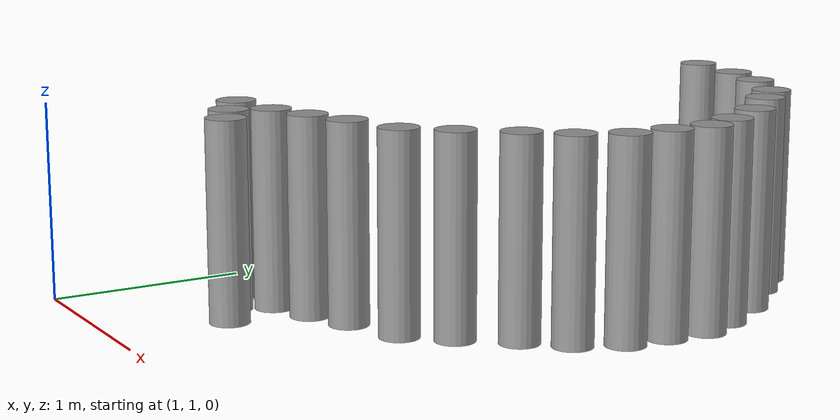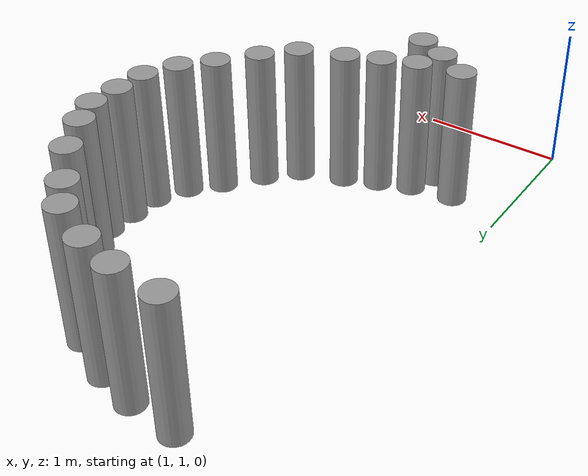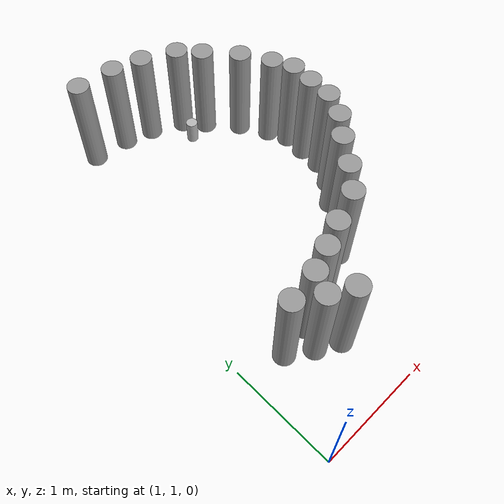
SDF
<sdf version="1.6">
 <world name="default">
  <model name="small_cylinder_0_clone">
   <link name="link">
    <inertial>
     <mass>1</mass>
     <inertia><ixx>0.145833</ixx><ixy>0</ixy><ixz>0</ixz><iyy>0.145833</iyy><iyz>0</iyz><izz>0.125</izz></inertia>
    </inertial>
    <visual name="visual">
     <geometry><cylinder><radius>0.1</radius><length>1</length></cylinder></geometry>
     <material>
      <script><name>Gazebo/Grey</name><uri>file://media/materials/scripts/gazebo.material</uri></script>
      <ambient>0.3 0.3 0.3 1</ambient>
      <diffuse>0.7 0.7 0.7 1</diffuse>
      <specular>0.01 0.01 0.01 1</specular>
      <emissive>0 0 0 1</emissive>
      <shader type="vertex"><normal_map>__default__</normal_map></shader>
     </material>
    </visual>
    <collision name="collision">
     <geometry><cylinder><radius>0.1</radius><length>1</length></cylinder></geometry>
     <surface>
      <friction>
       <ode><mu>1</mu><mu2>1</mu2><fdir1>0 0 0</fdir1><slip1>0</slip1><slip2>0</slip2></ode>
       <torsional>
        <coefficient>1</coefficient>
        <patch_radius>0</patch_radius>
        <surface_radius>0</surface_radius>
        <use_patch_radius>1</use_patch_radius>
        <ode><slip>0</slip></ode>
       </torsional>
      </friction>
      <bounce><restitution_coefficient>0</restitution_coefficient><threshold>1e+06</threshold></bounce>
      <contact>
       <collide_without_contact>0</collide_without_contact>
       <collide_without_contact_bitmask>1</collide_without_contact_bitmask>
       <collide_bitmask>1</collide_bitmask>
       <ode>
        <soft_cfm>0</soft_cfm>
        <soft_erp>0.2</soft_erp>
        <kp>1e+13</kp>
        <kd>1</kd>
        <max_vel>0.01</max_vel>
        <min_depth>0</min_depth>
       </ode>
       <bullet>
        <split_impulse>1</split_impulse>
        <split_impulse_penetration_threshold>-0.01</split_impulse_penetration_threshold>
        <soft_cfm>0</soft_cfm>
        <soft_erp>0.2</soft_erp>
        <kp>1e+13</kp>
        <kd>1</kd>
       </bullet>
      </contact>
     </surface>
    </collision>
   </link>
   <static>1</static>
   <pose>1.38888 1.84077 0.499121 -0 6e-06 -0.010855</pose>
  </model>
  <model name="small_cylinder_0_clone_33">
   <link name="link">
    <inertial>
     <mass>1</mass>
     <inertia><ixx>0.145833</ixx><ixy>0</ixy><ixz>0</ixz><iyy>0.145833</iyy><iyz>0</iyz><izz>0.125</izz></inertia>
    </inertial>
    <visual name="visual">
     <geometry><cylinder><radius>0.1</radius><length>1</length></cylinder></geometry>
     <material>
      <script><name>Gazebo/Grey</name><uri>file://media/materials/scripts/gazebo.material</uri></script>
      <ambient>0.3 0.3 0.3 1</ambient>
      <diffuse>0.7 0.7 0.7 1</diffuse>
      <specular>0.01 0.01 0.01 1</specular>
      <emissive>0 0 0 1</emissive>
      <shader type="vertex"><normal_map>__default__</normal_map></shader>
     </material>
    </visual>
    <collision name="collision">
     <geometry><cylinder><radius>0.1</radius><length>1</length></cylinder></geometry>
     <surface>
      <friction>
       <ode><mu>1</mu><mu2>1</mu2><fdir1>0 0 0</fdir1><slip1>0</slip1><slip2>0</slip2></ode>
       <torsional>
        <coefficient>1</coefficient>
        <patch_radius>0</patch_radius>
        <surface_radius>0</surface_radius>
        <use_patch_radius>1</use_patch_radius>
        <ode><slip>0</slip></ode>
       </torsional>
      </friction>
      <bounce><restitution_coefficient>0</restitution_coefficient><threshold>1e+06</threshold></bounce>
      <contact>
       <collide_without_contact>0</collide_without_contact>
       <collide_without_contact_bitmask>1</collide_without_contact_bitmask>
       <collide_bitmask>1</collide_bitmask>
       <ode>
        <soft_cfm>0</soft_cfm>
        <soft_erp>0.2</soft_erp>
        <kp>1e+13</kp>
        <kd>1</kd>
        <max_vel>0.01</max_vel>
        <min_depth>0</min_depth>
       </ode>
       <bullet>
        <split_impulse>1</split_impulse>
        <split_impulse_penetration_threshold>-0.01</split_impulse_penetration_threshold>
        <soft_cfm>0</soft_cfm>
        <soft_erp>0.2</soft_erp>
        <kp>1e+13</kp>
        <kd>1</kd>
       </bullet>
      </contact>
     </surface>
    </collision>
   </link>
   <static>1</static>
   <pose>1.58254 4.59247 0.499121 0 6e-06 -0.010847</pose>
  </model>
  <model name="small_cylinder_0_clone_34">
   <link name="link">
    <inertial>
     <mass>1</mass>
     <inertia><ixx>0.145833</ixx><ixy>0</ixy><ixz>0</ixz><iyy>0.145833</iyy><iyz>0</iyz><izz>0.125</izz></inertia>
    </inertial>
    <visual name="visual">
     <geometry><cylinder><radius>0.1</radius><length>1</length></cylinder></geometry>
     <material>
      <script><name>Gazebo/Grey</name><uri>file://media/materials/scripts/gazebo.material</uri></script>
      <ambient>0.3 0.3 0.3 1</ambient>
      <diffuse>0.7 0.7 0.7 1</diffuse>
      <specular>0.01 0.01 0.01 1</specular>
      <emissive>0 0 0 1</emissive>
      <shader type="vertex"><normal_map>__default__</normal_map></shader>
     </material>
    </visual>
    <collision name="collision">
     <geometry><cylinder><radius>0.1</radius><length>1</length></cylinder></geometry>
     <surface>
      <friction>
       <ode><mu>1</mu><mu2>1</mu2><fdir1>0 0 0</fdir1><slip1>0</slip1><slip2>0</slip2></ode>
       <torsional>
        <coefficient>1</coefficient>
        <patch_radius>0</patch_radius>
        <surface_radius>0</surface_radius>
        <use_patch_radius>1</use_patch_radius>
        <ode><slip>0</slip></ode>
       </torsional>
      </friction>
      <bounce><restitution_coefficient>0</restitution_coefficient><threshold>1e+06</threshold></bounce>
      <contact>
       <collide_without_contact>0</collide_without_contact>
       <collide_without_contact_bitmask>1</collide_without_contact_bitmask>
       <collide_bitmask>1</collide_bitmask>
       <ode>
        <soft_cfm>0</soft_cfm>
        <soft_erp>0.2</soft_erp>
        <kp>1e+13</kp>
        <kd>1</kd>
        <max_vel>0.01</max_vel>
        <min_depth>0</min_depth>
       </ode>
       <bullet>
        <split_impulse>1</split_impulse>
        <split_impulse_penetration_threshold>-0.01</split_impulse_penetration_threshold>
        <soft_cfm>0</soft_cfm>
        <soft_erp>0.2</soft_erp>
        <kp>1e+13</kp>
        <kd>1</kd>
       </bullet>
      </contact>
     </surface>
    </collision>
   </link>
   <static>1</static>
   <pose>1.93131 4.55353 0.499121 0 6e-06 -0.010886</pose>
  </model>
  <model name="small_cylinder_0_clone_38">
   <link name="link">
    <inertial>
     <mass>1</mass>
     <inertia><ixx>0.145833</ixx><ixy>0</ixy><ixz>0</ixz><iyy>0.145833</iyy><iyz>0</iyz><izz>0.125</izz></inertia>
    </inertial>
    <visual name="visual">
     <geometry><cylinder><radius>0.1</radius><length>1</length></cylinder></geometry>
     <material>
      <script><name>Gazebo/Grey</name><uri>file://media/materials/scripts/gazebo.material</uri></script>
      <ambient>0.3 0.3 0.3 1</ambient>
      <diffuse>0.7 0.7 0.7 1</diffuse>
      <specular>0.01 0.01 0.01 1</specular>
      <emissive>0 0 0 1</emissive>
      <shader type="vertex"><normal_map>__default__</normal_map></shader>
     </material>
    </visual>
    <collision name="collision">
     <geometry><cylinder><radius>0.1</radius><length>1</length></cylinder></geometry>
     <surface>
      <friction>
       <ode><mu>1</mu><mu2>1</mu2><fdir1>0 0 0</fdir1><slip1>0</slip1><slip2>0</slip2></ode>
       <torsional>
        <coefficient>1</coefficient>
        <patch_radius>0</patch_radius>
        <surface_radius>0</surface_radius>
        <use_patch_radius>1</use_patch_radius>
        <ode><slip>0</slip></ode>
       </torsional>
      </friction>
      <bounce><restitution_coefficient>0</restitution_coefficient><threshold>1e+06</threshold></bounce>
      <contact>
       <collide_without_contact>0</collide_without_contact>
       <collide_without_contact_bitmask>1</collide_without_contact_bitmask>
       <collide_bitmask>1</collide_bitmask>
       <ode>
        <soft_cfm>0</soft_cfm>
        <soft_erp>0.2</soft_erp>
        <kp>1e+13</kp>
        <kd>1</kd>
        <max_vel>0.01</max_vel>
        <min_depth>0</min_depth>
       </ode>
       <bullet>
        <split_impulse>1</split_impulse>
        <split_impulse_penetration_threshold>-0.01</split_impulse_penetration_threshold>
        <soft_cfm>0</soft_cfm>
        <soft_erp>0.2</soft_erp>
        <kp>1e+13</kp>
        <kd>1</kd>
       </bullet>
      </contact>
     </surface>
    </collision>
   </link>
   <static>1</static>
   <pose>2.20247 4.47561 0.499121 0 6e-06 -0.010839</pose>
  </model>
  <model name="small_cylinder_0_clone_39">
   <link name="link">
    <inertial>
     <mass>1</mass>
     <inertia><ixx>0.145833</ixx><ixy>0</ixy><ixz>0</ixz><iyy>0.145833</iyy><iyz>0</iyz><izz>0.125</izz></inertia>
    </inertial>
    <visual name="visual">
     <geometry><cylinder><radius>0.1</radius><length>1</length></cylinder></geometry>
     <material>
      <script><name>Gazebo/Grey</name><uri>file://media/materials/scripts/gazebo.material</uri></script>
      <ambient>0.3 0.3 0.3 1</ambient>
      <diffuse>0.7 0.7 0.7 1</diffuse>
      <specular>0.01 0.01 0.01 1</specular>
      <emissive>0 0 0 1</emissive>
      <shader type="vertex"><normal_map>__default__</normal_map></shader>
     </material>
    </visual>
    <collision name="collision">
     <geometry><cylinder><radius>0.1</radius><length>1</length></cylinder></geometry>
     <surface>
      <friction>
       <ode><mu>1</mu><mu2>1</mu2><fdir1>0 0 0</fdir1><slip1>0</slip1><slip2>0</slip2></ode>
       <torsional>
        <coefficient>1</coefficient>
        <patch_radius>0</patch_radius>
        <surface_radius>0</surface_radius>
        <use_patch_radius>1</use_patch_radius>
        <ode><slip>0</slip></ode>
       </torsional>
      </friction>
      <bounce><restitution_coefficient>0</restitution_coefficient><threshold>1e+06</threshold></bounce>
      <contact>
       <collide_without_contact>0</collide_without_contact>
       <collide_without_contact_bitmask>1</collide_without_contact_bitmask>
       <collide_bitmask>1</collide_bitmask>
       <ode>
        <soft_cfm>0</soft_cfm>
        <soft_erp>0.2</soft_erp>
        <kp>1e+13</kp>
        <kd>1</kd>
        <max_vel>0.01</max_vel>
        <min_depth>0</min_depth>
       </ode>
       <bullet>
        <split_impulse>1</split_impulse>
        <split_impulse_penetration_threshold>-0.01</split_impulse_penetration_threshold>
        <soft_cfm>0</soft_cfm>
        <soft_erp>0.2</soft_erp>
        <kp>1e+13</kp>
        <kd>1</kd>
       </bullet>
      </contact>
     </surface>
    </collision>
   </link>
   <static>1</static>
   <pose>2.50202 4.32863 0.499121 0 6e-06 -0.010788</pose>
  </model>
  <model name="small_cylinder_0_clone_40">
   <link name="link">
    <inertial>
     <mass>1</mass>
     <inertia><ixx>0.145833</ixx><ixy>0</ixy><ixz>0</ixz><iyy>0.145833</iyy><iyz>0</iyz><izz>0.125</izz></inertia>
    </inertial>
    <visual name="visual">
     <geometry><cylinder><radius>0.1</radius><length>1</length></cylinder></geometry>
     <material>
      <script><name>Gazebo/Grey</name><uri>file://media/materials/scripts/gazebo.material</uri></script>
      <ambient>0.3 0.3 0.3 1</ambient>
      <diffuse>0.7 0.7 0.7 1</diffuse>
      <specular>0.01 0.01 0.01 1</specular>
      <emissive>0 0 0 1</emissive>
      <shader type="vertex"><normal_map>__default__</normal_map></shader>
     </material>
    </visual>
    <collision name="collision">
     <geometry><cylinder><radius>0.1</radius><length>1</length></cylinder></geometry>
     <surface>
      <friction>
       <ode><mu>1</mu><mu2>1</mu2><fdir1>0 0 0</fdir1><slip1>0</slip1><slip2>0</slip2></ode>
       <torsional>
        <coefficient>1</coefficient>
        <patch_radius>0</patch_radius>
        <surface_radius>0</surface_radius>
        <use_patch_radius>1</use_patch_radius>
        <ode><slip>0</slip></ode>
       </torsional>
      </friction>
      <bounce><restitution_coefficient>0</restitution_coefficient><threshold>1e+06</threshold></bounce>
      <contact>
       <collide_without_contact>0</collide_without_contact>
       <collide_without_contact_bitmask>1</collide_without_contact_bitmask>
       <collide_bitmask>1</collide_bitmask>
       <ode>
        <soft_cfm>0</soft_cfm>
        <soft_erp>0.2</soft_erp>
        <kp>1e+13</kp>
        <kd>1</kd>
        <max_vel>0.01</max_vel>
        <min_depth>0</min_depth>
       </ode>
       <bullet>
        <split_impulse>1</split_impulse>
        <split_impulse_penetration_threshold>-0.01</split_impulse_penetration_threshold>
        <soft_cfm>0</soft_cfm>
        <soft_erp>0.2</soft_erp>
        <kp>1e+13</kp>
        <kd>1</kd>
       </bullet>
      </contact>
     </surface>
    </collision>
   </link>
   <static>1</static>
   <pose>2.65985 4.15302 0.499121 0 6e-06 -0.010837</pose>
  </model>
  <model name="small_cylinder_0_clone_41">
   <link name="link">
    <inertial>
     <mass>1</mass>
     <inertia><ixx>0.145833</ixx><ixy>0</ixy><ixz>0</ixz><iyy>0.145833</iyy><iyz>0</iyz><izz>0.125</izz></inertia>
    </inertial>
    <visual name="visual">
     <geometry><cylinder><radius>0.1</radius><length>1</length></cylinder></geometry>
     <material>
      <script><name>Gazebo/Grey</name><uri>file://media/materials/scripts/gazebo.material</uri></script>
      <ambient>0.3 0.3 0.3 1</ambient>
      <diffuse>0.7 0.7 0.7 1</diffuse>
      <specular>0.01 0.01 0.01 1</specular>
      <emissive>0 0 0 1</emissive>
      <shader type="vertex"><normal_map>__default__</normal_map></shader>
     </material>
    </visual>
    <collision name="collision">
     <geometry><cylinder><radius>0.1</radius><length>1</length></cylinder></geometry>
     <surface>
      <friction>
       <ode><mu>1</mu><mu2>1</mu2><fdir1>0 0 0</fdir1><slip1>0</slip1><slip2>0</slip2></ode>
       <torsional>
        <coefficient>1</coefficient>
        <patch_radius>0</patch_radius>
        <surface_radius>0</surface_radius>
        <use_patch_radius>1</use_patch_radius>
        <ode><slip>0</slip></ode>
       </torsional>
      </friction>
      <bounce><restitution_coefficient>0</restitution_coefficient><threshold>1e+06</threshold></bounce>
      <contact>
       <collide_without_contact>0</collide_without_contact>
       <collide_without_contact_bitmask>1</collide_without_contact_bitmask>
       <collide_bitmask>1</collide_bitmask>
       <ode>
        <soft_cfm>0</soft_cfm>
        <soft_erp>0.2</soft_erp>
        <kp>1e+13</kp>
        <kd>1</kd>
        <max_vel>0.01</max_vel>
        <min_depth>0</min_depth>
       </ode>
       <bullet>
        <split_impulse>1</split_impulse>
        <split_impulse_penetration_threshold>-0.01</split_impulse_penetration_threshold>
        <soft_cfm>0</soft_cfm>
        <soft_erp>0.2</soft_erp>
        <kp>1e+13</kp>
        <kd>1</kd>
       </bullet>
      </contact>
     </surface>
    </collision>
   </link>
   <static>1</static>
   <pose>2.89012 3.89183 0.499121 -0 6e-06 -0.010846</pose>
  </model>
  <model name="small_cylinder_0_clone_42">
   <link name="link">
    <inertial>
     <mass>1</mass>
     <inertia><ixx>0.145833</ixx><ixy>0</ixy><ixz>0</ixz><iyy>0.145833</iyy><iyz>0</iyz><izz>0.125</izz></inertia>
    </inertial>
    <visual name="visual">
     <geometry><cylinder><radius>0.1</radius><length>1</length></cylinder></geometry>
     <material>
      <script><name>Gazebo/Grey</name><uri>file://media/materials/scripts/gazebo.material</uri></script>
      <ambient>0.3 0.3 0.3 1</ambient>
      <diffuse>0.7 0.7 0.7 1</diffuse>
      <specular>0.01 0.01 0.01 1</specular>
      <emissive>0 0 0 1</emissive>
      <shader type="vertex"><normal_map>__default__</normal_map></shader>
     </material>
    </visual>
    <collision name="collision">
     <geometry><cylinder><radius>0.1</radius><length>1</length></cylinder></geometry>
     <surface>
      <friction>
       <ode><mu>1</mu><mu2>1</mu2><fdir1>0 0 0</fdir1><slip1>0</slip1><slip2>0</slip2></ode>
       <torsional>
        <coefficient>1</coefficient>
        <patch_radius>0</patch_radius>
        <surface_radius>0</surface_radius>
        <use_patch_radius>1</use_patch_radius>
        <ode><slip>0</slip></ode>
       </torsional>
      </friction>
      <bounce><restitution_coefficient>0</restitution_coefficient><threshold>1e+06</threshold></bounce>
      <contact>
       <collide_without_contact>0</collide_without_contact>
       <collide_without_contact_bitmask>1</collide_without_contact_bitmask>
       <collide_bitmask>1</collide_bitmask>
       <ode>
        <soft_cfm>0</soft_cfm>
        <soft_erp>0.2</soft_erp>
        <kp>1e+13</kp>
        <kd>1</kd>
        <max_vel>0.01</max_vel>
        <min_depth>0</min_depth>
       </ode>
       <bullet>
        <split_impulse>1</split_impulse>
        <split_impulse_penetration_threshold>-0.01</split_impulse_penetration_threshold>
        <soft_cfm>0</soft_cfm>
        <soft_erp>0.2</soft_erp>
        <kp>1e+13</kp>
        <kd>1</kd>
       </bullet>
      </contact>
     </surface>
    </collision>
   </link>
   <static>1</static>
   <pose>3.03888 3.62894 0.499121 0 6e-06 -0.010854</pose>
  </model>
  <model name="small_cylinder_0_clone_clone">
   <link name="link">
    <inertial>
     <mass>1</mass>
     <inertia><ixx>0.145833</ixx><ixy>0</ixy><ixz>0</ixz><iyy>0.145833</iyy><iyz>0</iyz><izz>0.125</izz></inertia>
    </inertial>
    <visual name="visual">
     <geometry><cylinder><radius>0.1</radius><length>1</length></cylinder></geometry>
     <material>
      <script><name>Gazebo/Grey</name><uri>file://media/materials/scripts/gazebo.material</uri></script>
      <ambient>0.3 0.3 0.3 1</ambient>
      <diffuse>0.7 0.7 0.7 1</diffuse>
      <specular>0.01 0.01 0.01 1</specular>
      <emissive>0 0 0 1</emissive>
      <shader type="vertex"><normal_map>__default__</normal_map></shader>
     </material>
    </visual>
    <collision name="collision">
     <geometry><cylinder><radius>0.1</radius><length>1</length></cylinder></geometry>
     <surface>
      <friction>
       <ode><mu>1</mu><mu2>1</mu2><fdir1>0 0 0</fdir1><slip1>0</slip1><slip2>0</slip2></ode>
       <torsional>
        <coefficient>1</coefficient>
        <patch_radius>0</patch_radius>
        <surface_radius>0</surface_radius>
        <use_patch_radius>1</use_patch_radius>
        <ode><slip>0</slip></ode>
       </torsional>
      </friction>
      <bounce><restitution_coefficient>0</restitution_coefficient><threshold>1e+06</threshold></bounce>
      <contact>
       <collide_without_contact>0</collide_without_contact>
       <collide_without_contact_bitmask>1</collide_without_contact_bitmask>
       <collide_bitmask>1</collide_bitmask>
       <ode>
        <soft_cfm>0</soft_cfm>
        <soft_erp>0.2</soft_erp>
        <kp>1e+13</kp>
        <kd>1</kd>
        <max_vel>0.01</max_vel>
        <min_depth>0</min_depth>
       </ode>
       <bullet>
        <split_impulse>1</split_impulse>
        <split_impulse_penetration_threshold>-0.01</split_impulse_penetration_threshold>
        <soft_cfm>0</soft_cfm>
        <soft_erp>0.2</soft_erp>
        <kp>1e+13</kp>
        <kd>1</kd>
       </bullet>
      </contact>
     </surface>
    </collision>
   </link>
   <static>1</static>
   <pose>1.69118 1.88563 0.499121 -0 6e-06 -0.010855</pose>
  </model>
  <model name="small_cylinder_0_clone_clone_0">
   <link name="link">
    <inertial>
     <mass>1</mass>
     <inertia><ixx>0.145833</ixx><ixy>0</ixy><ixz>0</ixz><iyy>0.145833</iyy><iyz>0</iyz><izz>0.125</izz></inertia>
    </inertial>
    <visual name="visual">
     <geometry><cylinder><radius>0.1</radius><length>1</length></cylinder></geometry>
     <material>
      <script><name>Gazebo/Grey</name><uri>file://media/materials/scripts/gazebo.material</uri></script>
      <ambient>0.3 0.3 0.3 1</ambient>
      <diffuse>0.7 0.7 0.7 1</diffuse>
      <specular>0.01 0.01 0.01 1</specular>
      <emissive>0 0 0 1</emissive>
      <shader type="vertex"><normal_map>__default__</normal_map></shader>
     </material>
    </visual>
    <collision name="collision">
     <geometry><cylinder><radius>0.1</radius><length>1</length></cylinder></geometry>
     <surface>
      <friction>
       <ode><mu>1</mu><mu2>1</mu2><fdir1>0 0 0</fdir1><slip1>0</slip1><slip2>0</slip2></ode>
       <torsional>
        <coefficient>1</coefficient>
        <patch_radius>0</patch_radius>
        <surface_radius>0</surface_radius>
        <use_patch_radius>1</use_patch_radius>
        <ode><slip>0</slip></ode>
       </torsional>
      </friction>
      <bounce><restitution_coefficient>0</restitution_coefficient><threshold>1e+06</threshold></bounce>
      <contact>
       <collide_without_contact>0</collide_without_contact>
       <collide_without_contact_bitmask>1</collide_without_contact_bitmask>
       <collide_bitmask>1</collide_bitmask>
       <ode>
        <soft_cfm>0</soft_cfm>
        <soft_erp>0.2</soft_erp>
        <kp>1e+13</kp>
        <kd>1</kd>
        <max_vel>0.01</max_vel>
        <min_depth>0</min_depth>
       </ode>
       <bullet>
        <split_impulse>1</split_impulse>
        <split_impulse_penetration_threshold>-0.01</split_impulse_penetration_threshold>
        <soft_cfm>0</soft_cfm>
        <soft_erp>0.2</soft_erp>
        <kp>1e+13</kp>
        <kd>1</kd>
       </bullet>
      </contact>
     </surface>
    </collision>
   </link>
   <static>1</static>
   <pose>1.91586 1.96701 0.499121 0 6e-06 -0.010801</pose>
  </model>
  <model name="small_cylinder_0_clone_clone_1">
   <link name="link">
    <inertial>
     <mass>1</mass>
     <inertia><ixx>0.145833</ixx><ixy>0</ixy><ixz>0</ixz><iyy>0.145833</iyy><iyz>0</iyz><izz>0.125</izz></inertia>
    </inertial>
    <visual name="visual">
     <geometry><cylinder><radius>0.1</radius><length>1</length></cylinder></geometry>
     <material>
      <script><name>Gazebo/Grey</name><uri>file://media/materials/scripts/gazebo.material</uri></script>
      <ambient>0.3 0.3 0.3 1</ambient>
      <diffuse>0.7 0.7 0.7 1</diffuse>
      <specular>0.01 0.01 0.01 1</specular>
      <emissive>0 0 0 1</emissive>
      <shader type="vertex"><normal_map>__default__</normal_map></shader>
     </material>
    </visual>
    <collision name="collision">
     <geometry><cylinder><radius>0.1</radius><length>1</length></cylinder></geometry>
     <surface>
      <friction>
       <ode><mu>1</mu><mu2>1</mu2><fdir1>0 0 0</fdir1><slip1>0</slip1><slip2>0</slip2></ode>
       <torsional>
        <coefficient>1</coefficient>
        <patch_radius>0</patch_radius>
        <surface_radius>0</surface_radius>
        <use_patch_radius>1</use_patch_radius>
        <ode><slip>0</slip></ode>
       </torsional>
      </friction>
      <bounce><restitution_coefficient>0</restitution_coefficient><threshold>1e+06</threshold></bounce>
      <contact>
       <collide_without_contact>0</collide_without_contact>
       <collide_without_contact_bitmask>1</collide_without_contact_bitmask>
       <collide_bitmask>1</collide_bitmask>
       <ode>
        <soft_cfm>0</soft_cfm>
        <soft_erp>0.2</soft_erp>
        <kp>1e+13</kp>
        <kd>1</kd>
        <max_vel>0.01</max_vel>
        <min_depth>0</min_depth>
       </ode>
       <bullet>
        <split_impulse>1</split_impulse>
        <split_impulse_penetration_threshold>-0.01</split_impulse_penetration_threshold>
        <soft_cfm>0</soft_cfm>
        <soft_erp>0.2</soft_erp>
        <kp>1e+13</kp>
        <kd>1</kd>
       </bullet>
      </contact>
     </surface>
    </collision>
   </link>
   <static>1</static>
   <pose>2.14336 2.05861 0.499121 0 6e-06 -0.01074</pose>
  </model>
  <model name="small_cylinder_0_clone_clone_2">
   <link name="link">
    <inertial>
     <mass>1</mass>
     <inertia><ixx>0.145833</ixx><ixy>0</ixy><ixz>0</ixz><iyy>0.145833</iyy><iyz>0</iyz><izz>0.125</izz></inertia>
    </inertial>
    <visual name="visual">
     <geometry><cylinder><radius>0.1</radius><length>1</length></cylinder></geometry>
     <material>
      <script><name>Gazebo/Grey</name><uri>file://media/materials/scripts/gazebo.material</uri></script>
      <ambient>0.3 0.3 0.3 1</ambient>
      <diffuse>0.7 0.7 0.7 1</diffuse>
      <specular>0.01 0.01 0.01 1</specular>
      <emissive>0 0 0 1</emissive>
      <shader type="vertex"><normal_map>__default__</normal_map></shader>
     </material>
    </visual>
    <collision name="collision">
     <geometry><cylinder><radius>0.1</radius><length>1</length></cylinder></geometry>
     <surface>
      <friction>
       <ode><mu>1</mu><mu2>1</mu2><fdir1>0 0 0</fdir1><slip1>0</slip1><slip2>0</slip2></ode>
       <torsional>
        <coefficient>1</coefficient>
        <patch_radius>0</patch_radius>
        <surface_radius>0</surface_radius>
        <use_patch_radius>1</use_patch_radius>
        <ode><slip>0</slip></ode>
       </torsional>
      </friction>
      <bounce><restitution_coefficient>0</restitution_coefficient><threshold>1e+06</threshold></bounce>
      <contact>
       <collide_without_contact>0</collide_without_contact>
       <collide_without_contact_bitmask>1</collide_without_contact_bitmask>
       <collide_bitmask>1</collide_bitmask>
       <ode>
        <soft_cfm>0</soft_cfm>
        <soft_erp>0.2</soft_erp>
        <kp>1e+13</kp>
        <kd>1</kd>
        <max_vel>0.01</max_vel>
        <min_depth>0</min_depth>
       </ode>
       <bullet>
        <split_impulse>1</split_impulse>
        <split_impulse_penetration_threshold>-0.01</split_impulse_penetration_threshold>
        <soft_cfm>0</soft_cfm>
        <soft_erp>0.2</soft_erp>
        <kp>1e+13</kp>
        <kd>1</kd>
       </bullet>
      </contact>
     </surface>
    </collision>
   </link>
   <static>1</static>
   <pose>2.44389 2.16344 0.499121 0 6e-06 -0.010678</pose>
  </model>
  <model name="small_cylinder_0_clone_clone_3">
   <link name="link">
    <inertial>
     <mass>1</mass>
     <inertia><ixx>0.145833</ixx><ixy>0</ixy><ixz>0</ixz><iyy>0.145833</iyy><iyz>0</iyz><izz>0.125</izz></inertia>
    </inertial>
    <visual name="visual">
     <geometry><cylinder><radius>0.1</radius><length>1</length></cylinder></geometry>
     <material>
      <script><name>Gazebo/Grey</name><uri>file://media/materials/scripts/gazebo.material</uri></script>
      <ambient>0.3 0.3 0.3 1</ambient>
      <diffuse>0.7 0.7 0.7 1</diffuse>
      <specular>0.01 0.01 0.01 1</specular>
      <emissive>0 0 0 1</emissive>
      <shader type="vertex"><normal_map>__default__</normal_map></shader>
     </material>
    </visual>
    <collision name="collision">
     <geometry><cylinder><radius>0.1</radius><length>1</length></cylinder></geometry>
     <surface>
      <friction>
       <ode><mu>1</mu><mu2>1</mu2><fdir1>0 0 0</fdir1><slip1>0</slip1><slip2>0</slip2></ode>
       <torsional>
        <coefficient>1</coefficient>
        <patch_radius>0</patch_radius>
        <surface_radius>0</surface_radius>
        <use_patch_radius>1</use_patch_radius>
        <ode><slip>0</slip></ode>
       </torsional>
      </friction>
      <bounce><restitution_coefficient>0</restitution_coefficient><threshold>1e+06</threshold></bounce>
      <contact>
       <collide_without_contact>0</collide_without_contact>
       <collide_without_contact_bitmask>1</collide_without_contact_bitmask>
       <collide_bitmask>1</collide_bitmask>
       <ode>
        <soft_cfm>0</soft_cfm>
        <soft_erp>0.2</soft_erp>
        <kp>1e+13</kp>
        <kd>1</kd>
        <max_vel>0.01</max_vel>
        <min_depth>0</min_depth>
       </ode>
       <bullet>
        <split_impulse>1</split_impulse>
        <split_impulse_penetration_threshold>-0.01</split_impulse_penetration_threshold>
        <soft_cfm>0</soft_cfm>
        <soft_erp>0.2</soft_erp>
        <kp>1e+13</kp>
        <kd>1</kd>
       </bullet>
      </contact>
     </surface>
    </collision>
   </link>
   <static>1</static>
   <pose>2.6261 2.35768 0.499121 0 6e-06 -0.010632</pose>
  </model>
  <model name="small_cylinder_0_clone_clone_4">
   <link name="link">
    <inertial>
     <mass>1</mass>
     <inertia><ixx>0.145833</ixx><ixy>0</ixy><ixz>0</ixz><iyy>0.145833</iyy><iyz>0</iyz><izz>0.125</izz></inertia>
    </inertial>
    <visual name="visual">
     <geometry><cylinder><radius>0.1</radius><length>1</length></cylinder></geometry>
     <material>
      <script><name>Gazebo/Grey</name><uri>file://media/materials/scripts/gazebo.material</uri></script>
      <ambient>0.3 0.3 0.3 1</ambient>
      <diffuse>0.7 0.7 0.7 1</diffuse>
      <specular>0.01 0.01 0.01 1</specular>
      <emissive>0 0 0 1</emissive>
      <shader type="vertex"><normal_map>__default__</normal_map></shader>
     </material>
    </visual>
    <collision name="collision">
     <geometry><cylinder><radius>0.1</radius><length>1</length></cylinder></geometry>
     <surface>
      <friction>
       <ode><mu>1</mu><mu2>1</mu2><fdir1>0 0 0</fdir1><slip1>0</slip1><slip2>0</slip2></ode>
       <torsional>
        <coefficient>1</coefficient>
        <patch_radius>0</patch_radius>
        <surface_radius>0</surface_radius>
        <use_patch_radius>1</use_patch_radius>
        <ode><slip>0</slip></ode>
       </torsional>
      </friction>
      <bounce><restitution_coefficient>0</restitution_coefficient><threshold>1e+06</threshold></bounce>
      <contact>
       <collide_without_contact>0</collide_without_contact>
       <collide_without_contact_bitmask>1</collide_without_contact_bitmask>
       <collide_bitmask>1</collide_bitmask>
       <ode>
        <soft_cfm>0</soft_cfm>
        <soft_erp>0.2</soft_erp>
        <kp>1e+13</kp>
        <kd>1</kd>
        <max_vel>0.01</max_vel>
        <min_depth>0</min_depth>
       </ode>
       <bullet>
        <split_impulse>1</split_impulse>
        <split_impulse_penetration_threshold>-0.01</split_impulse_penetration_threshold>
        <soft_cfm>0</soft_cfm>
        <soft_erp>0.2</soft_erp>
        <kp>1e+13</kp>
        <kd>1</kd>
       </bullet>
      </contact>
     </surface>
    </collision>
   </link>
   <static>1</static>
   <pose>2.81502 2.59123 0.499121 0 6e-06 -0.010578</pose>
  </model>
  <model name="small_cylinder_0_clone_clone_5">
   <link name="link">
    <inertial>
     <mass>1</mass>
     <inertia><ixx>0.145833</ixx><ixy>0</ixy><ixz>0</ixz><iyy>0.145833</iyy><iyz>0</iyz><izz>0.125</izz></inertia>
    </inertial>
    <visual name="visual">
     <geometry><cylinder><radius>0.1</radius><length>1</length></cylinder></geometry>
     <material>
      <script><name>Gazebo/Grey</name><uri>file://media/materials/scripts/gazebo.material</uri></script>
      <ambient>0.3 0.3 0.3 1</ambient>
      <diffuse>0.7 0.7 0.7 1</diffuse>
      <specular>0.01 0.01 0.01 1</specular>
      <emissive>0 0 0 1</emissive>
      <shader type="vertex"><normal_map>__default__</normal_map></shader>
     </material>
    </visual>
    <collision name="collision">
     <geometry><cylinder><radius>0.1</radius><length>1</length></cylinder></geometry>
     <surface>
      <friction>
       <ode><mu>1</mu><mu2>1</mu2><fdir1>0 0 0</fdir1><slip1>0</slip1><slip2>0</slip2></ode>
       <torsional>
        <coefficient>1</coefficient>
        <patch_radius>0</patch_radius>
        <surface_radius>0</surface_radius>
        <use_patch_radius>1</use_patch_radius>
        <ode><slip>0</slip></ode>
       </torsional>
      </friction>
      <bounce><restitution_coefficient>0</restitution_coefficient><threshold>1e+06</threshold></bounce>
      <contact>
       <collide_without_contact>0</collide_without_contact>
       <collide_without_contact_bitmask>1</collide_without_contact_bitmask>
       <collide_bitmask>1</collide_bitmask>
       <ode>
        <soft_cfm>0</soft_cfm>
        <soft_erp>0.2</soft_erp>
        <kp>1e+13</kp>
        <kd>1</kd>
        <max_vel>0.01</max_vel>
        <min_depth>0</min_depth>
       </ode>
       <bullet>
        <split_impulse>1</split_impulse>
        <split_impulse_penetration_threshold>-0.01</split_impulse_penetration_threshold>
        <soft_cfm>0</soft_cfm>
        <soft_erp>0.2</soft_erp>
        <kp>1e+13</kp>
        <kd>1</kd>
       </bullet>
      </contact>
     </surface>
    </collision>
   </link>
   <static>1</static>
   <pose>2.98303 2.77264 0.499121 0 6e-06 -0.010516</pose>
  </model>
  <model name="small_cylinder_0_clone_clone_6">
   <link name="link">
    <inertial>
     <mass>1</mass>
     <inertia><ixx>0.145833</ixx><ixy>0</ixy><ixz>0</ixz><iyy>0.145833</iyy><iyz>0</iyz><izz>0.125</izz></inertia>
    </inertial>
    <visual name="visual">
     <geometry><cylinder><radius>0.1</radius><length>1</length></cylinder></geometry>
     <material>
      <script><name>Gazebo/Grey</name><uri>file://media/materials/scripts/gazebo.material</uri></script>
      <ambient>0.3 0.3 0.3 1</ambient>
      <diffuse>0.7 0.7 0.7 1</diffuse>
      <specular>0.01 0.01 0.01 1</specular>
      <emissive>0 0 0 1</emissive>
      <shader type="vertex"><normal_map>__default__</normal_map></shader>
     </material>
    </visual>
    <collision name="collision">
     <geometry><cylinder><radius>0.1</radius><length>1</length></cylinder></geometry>
     <surface>
      <friction>
       <ode><mu>1</mu><mu2>1</mu2><fdir1>0 0 0</fdir1><slip1>0</slip1><slip2>0</slip2></ode>
       <torsional>
        <coefficient>1</coefficient>
        <patch_radius>0</patch_radius>
        <surface_radius>0</surface_radius>
        <use_patch_radius>1</use_patch_radius>
        <ode><slip>0</slip></ode>
       </torsional>
      </friction>
      <bounce><restitution_coefficient>0</restitution_coefficient><threshold>1e+06</threshold></bounce>
      <contact>
       <collide_without_contact>0</collide_without_contact>
       <collide_without_contact_bitmask>1</collide_without_contact_bitmask>
       <collide_bitmask>1</collide_bitmask>
       <ode>
        <soft_cfm>0</soft_cfm>
        <soft_erp>0.2</soft_erp>
        <kp>1e+13</kp>
        <kd>1</kd>
        <max_vel>0.01</max_vel>
        <min_depth>0</min_depth>
       </ode>
       <bullet>
        <split_impulse>1</split_impulse>
        <split_impulse_penetration_threshold>-0.01</split_impulse_penetration_threshold>
        <soft_cfm>0</soft_cfm>
        <soft_erp>0.2</soft_erp>
        <kp>1e+13</kp>
        <kd>1</kd>
       </bullet>
      </contact>
     </surface>
    </collision>
   </link>
   <static>1</static>
   <pose>3.09287 2.99269 0.499121 0 6e-06 -0.010448</pose>
  </model>
  <model name="small_cylinder_0_clone_clone_7">
   <link name="link">
    <inertial>
     <mass>1</mass>
     <inertia><ixx>0.145833</ixx><ixy>0</ixy><ixz>0</ixz><iyy>0.145833</iyy><iyz>0</iyz><izz>0.125</izz></inertia>
    </inertial>
    <visual name="visual">
     <geometry><cylinder><radius>0.1</radius><length>1</length></cylinder></geometry>
     <material>
      <script><name>Gazebo/Grey</name><uri>file://media/materials/scripts/gazebo.material</uri></script>
      <ambient>0.3 0.3 0.3 1</ambient>
      <diffuse>0.7 0.7 0.7 1</diffuse>
      <specular>0.01 0.01 0.01 1</specular>
      <emissive>0 0 0 1</emissive>
      <shader type="vertex"><normal_map>__default__</normal_map></shader>
     </material>
    </visual>
    <collision name="collision">
     <geometry><cylinder><radius>0.1</radius><length>1</length></cylinder></geometry>
     <surface>
      <friction>
       <ode><mu>1</mu><mu2>1</mu2><fdir1>0 0 0</fdir1><slip1>0</slip1><slip2>0</slip2></ode>
       <torsional>
        <coefficient>1</coefficient>
        <patch_radius>0</patch_radius>
        <surface_radius>0</surface_radius>
        <use_patch_radius>1</use_patch_radius>
        <ode><slip>0</slip></ode>
       </torsional>
      </friction>
      <bounce><restitution_coefficient>0</restitution_coefficient><threshold>1e+06</threshold></bounce>
      <contact>
       <collide_without_contact>0</collide_without_contact>
       <collide_without_contact_bitmask>1</collide_without_contact_bitmask>
       <collide_bitmask>1</collide_bitmask>
       <ode>
        <soft_cfm>0</soft_cfm>
        <soft_erp>0.2</soft_erp>
        <kp>1e+13</kp>
        <kd>1</kd>
        <max_vel>0.01</max_vel>
        <min_depth>0</min_depth>
       </ode>
       <bullet>
        <split_impulse>1</split_impulse>
        <split_impulse_penetration_threshold>-0.01</split_impulse_penetration_threshold>
        <soft_cfm>0</soft_cfm>
        <soft_erp>0.2</soft_erp>
        <kp>1e+13</kp>
        <kd>1</kd>
       </bullet>
      </contact>
     </surface>
    </collision>
   </link>
   <static>1</static>
   <pose>3.10897 3.21857 0.499121 0 6e-06 -0.01041</pose>
  </model>
  <model name="small_cylinder_0_clone_clone_8">
   <link name="link">
    <inertial>
     <mass>1</mass>
     <inertia><ixx>0.145833</ixx><ixy>0</ixy><ixz>0</ixz><iyy>0.145833</iyy><iyz>0</iyz><izz>0.125</izz></inertia>
    </inertial>
    <visual name="visual">
     <geometry><cylinder><radius>0.1</radius><length>1</length></cylinder></geometry>
     <material>
      <script><name>Gazebo/Grey</name><uri>file://media/materials/scripts/gazebo.material</uri></script>
      <ambient>0.3 0.3 0.3 1</ambient>
      <diffuse>0.7 0.7 0.7 1</diffuse>
      <specular>0.01 0.01 0.01 1</specular>
      <emissive>0 0 0 1</emissive>
      <shader type="vertex"><normal_map>__default__</normal_map></shader>
     </material>
    </visual>
    <collision name="collision">
     <geometry><cylinder><radius>0.1</radius><length>1</length></cylinder></geometry>
     <surface>
      <friction>
       <ode><mu>1</mu><mu2>1</mu2><fdir1>0 0 0</fdir1><slip1>0</slip1><slip2>0</slip2></ode>
       <torsional>
        <coefficient>1</coefficient>
        <patch_radius>0</patch_radius>
        <surface_radius>0</surface_radius>
        <use_patch_radius>1</use_patch_radius>
        <ode><slip>0</slip></ode>
       </torsional>
      </friction>
      <bounce><restitution_coefficient>0</restitution_coefficient><threshold>1e+06</threshold></bounce>
      <contact>
       <collide_without_contact>0</collide_without_contact>
       <collide_without_contact_bitmask>1</collide_without_contact_bitmask>
       <collide_bitmask>1</collide_bitmask>
       <ode>
        <soft_cfm>0</soft_cfm>
        <soft_erp>0.2</soft_erp>
        <kp>1e+13</kp>
        <kd>1</kd>
        <max_vel>0.01</max_vel>
        <min_depth>0</min_depth>
       </ode>
       <bullet>
        <split_impulse>1</split_impulse>
        <split_impulse_penetration_threshold>-0.01</split_impulse_penetration_threshold>
        <soft_cfm>0</soft_cfm>
        <soft_erp>0.2</soft_erp>
        <kp>1e+13</kp>
        <kd>1</kd>
       </bullet>
      </contact>
     </surface>
    </collision>
   </link>
   <static>1</static>
   <pose>3.12186 3.43846 0.499121 0 6e-06 -0.010372</pose>
  </model>
  <model name="small_cylinder_0_clone_clone_31">
   <link name="link">
    <inertial>
     <mass>1</mass>
     <inertia><ixx>0.145833</ixx><ixy>0</ixy><ixz>0</ixz><iyy>0.145833</iyy><iyz>0</iyz><izz>0.125</izz></inertia>
    </inertial>
    <visual name="visual">
     <geometry><cylinder><radius>0.1</radius><length>1</length></cylinder></geometry>
     <material>
      <script><name>Gazebo/Grey</name><uri>file://media/materials/scripts/gazebo.material</uri></script>
      <ambient>0.3 0.3 0.3 1</ambient>
      <diffuse>0.7 0.7 0.7 1</diffuse>
      <specular>0.01 0.01 0.01 1</specular>
      <emissive>0 0 0 1</emissive>
      <shader type="vertex"><normal_map>__default__</normal_map></shader>
     </material>
    </visual>
    <collision name="collision">
     <geometry><cylinder><radius>0.1</radius><length>1</length></cylinder></geometry>
     <surface>
      <friction>
       <ode><mu>1</mu><mu2>1</mu2><fdir1>0 0 0</fdir1><slip1>0</slip1><slip2>0</slip2></ode>
       <torsional>
        <coefficient>1</coefficient>
        <patch_radius>0</patch_radius>
        <surface_radius>0</surface_radius>
        <use_patch_radius>1</use_patch_radius>
        <ode><slip>0</slip></ode>
       </torsional>
      </friction>
      <bounce><restitution_coefficient>0</restitution_coefficient><threshold>1e+06</threshold></bounce>
      <contact>
       <collide_without_contact>0</collide_without_contact>
       <collide_without_contact_bitmask>1</collide_without_contact_bitmask>
       <collide_bitmask>1</collide_bitmask>
       <ode>
        <soft_cfm>0</soft_cfm>
        <soft_erp>0.2</soft_erp>
        <kp>1e+13</kp>
        <kd>1</kd>
        <max_vel>0.01</max_vel>
        <min_depth>0</min_depth>
       </ode>
       <bullet>
        <split_impulse>1</split_impulse>
        <split_impulse_penetration_threshold>-0.01</split_impulse_penetration_threshold>
        <soft_cfm>0</soft_cfm>
        <soft_erp>0.2</soft_erp>
        <kp>1e+13</kp>
        <kd>1</kd>
       </bullet>
      </contact>
     </surface>
    </collision>
   </link>
   <static>1</static>
   <pose>1.81675 1.58525 0.499121 0 6e-06 -0.010776</pose>
  </model>
  <model name="small_cylinder_0_clone_clone_32">
   <link name="link">
    <inertial>
     <mass>1</mass>
     <inertia><ixx>0.145833</ixx><ixy>0</ixy><ixz>0</ixz><iyy>0.145833</iyy><iyz>0</iyz><izz>0.125</izz></inertia>
    </inertial>
    <visual name="visual">
     <geometry><cylinder><radius>0.1</radius><length>1</length></cylinder></geometry>
     <material>
      <script><name>Gazebo/Grey</name><uri>file://media/materials/scripts/gazebo.material</uri></script>
      <ambient>0.3 0.3 0.3 1</ambient>
      <diffuse>0.7 0.7 0.7 1</diffuse>
      <specular>0.01 0.01 0.01 1</specular>
      <emissive>0 0 0 1</emissive>
      <shader type="vertex"><normal_map>__default__</normal_map></shader>
     </material>
    </visual>
    <collision name="collision">
     <geometry><cylinder><radius>0.1</radius><length>1</length></cylinder></geometry>
     <surface>
      <friction>
       <ode><mu>1</mu><mu2>1</mu2><fdir1>0 0 0</fdir1><slip1>0</slip1><slip2>0</slip2></ode>
       <torsional>
        <coefficient>1</coefficient>
        <patch_radius>0</patch_radius>
        <surface_radius>0</surface_radius>
        <use_patch_radius>1</use_patch_radius>
        <ode><slip>0</slip></ode>
       </torsional>
      </friction>
      <bounce><restitution_coefficient>0</restitution_coefficient><threshold>1e+06</threshold></bounce>
      <contact>
       <collide_without_contact>0</collide_without_contact>
       <collide_without_contact_bitmask>1</collide_without_contact_bitmask>
       <collide_bitmask>1</collide_bitmask>
       <ode>
        <soft_cfm>0</soft_cfm>
        <soft_erp>0.2</soft_erp>
        <kp>1e+13</kp>
        <kd>1</kd>
        <max_vel>0.01</max_vel>
        <min_depth>0</min_depth>
       </ode>
       <bullet>
        <split_impulse>1</split_impulse>
        <split_impulse_penetration_threshold>-0.01</split_impulse_penetration_threshold>
        <soft_cfm>0</soft_cfm>
        <soft_erp>0.2</soft_erp>
        <kp>1e+13</kp>
        <kd>1</kd>
       </bullet>
      </contact>
     </surface>
    </collision>
   </link>
   <static>1</static>
   <pose>1.60861 1.69663 0.499121 0 6e-06 -0.010792</pose>
  </model>
  <model name="beer_clone_clone">
   <link name="link">
    <pose>0 0 0.115 0 -0 0</pose>
    <inertial>
     <mass>0.39</mass>
     <inertia><ixx>0.00058</ixx><ixy>0</ixy><ixz>0</ixz><iyy>0.00058</iyy><iyz>0</iyz><izz>0.00019</izz></inertia>
    </inertial>
    <collision name="collision">
     <geometry><cylinder><radius>0.055</radius><length>0.23</length></cylinder></geometry>
    </collision>
    <visual name="visual">
     <geometry><cylinder><radius>0.055</radius><length>0.23</length></cylinder></geometry>
     <material>
      <script>
       <uri>model://beer/materials/scripts</uri>
       <uri>model://beer/materials/textures</uri>
       <name>Beer/Diffuse</name>
      </script>
     </material>
    </visual>
   </link>
   <pose>2.44497 4.12199 -0.00088 4e-06 -5.1e-05 1.68311</pose>
  </model>
 </world>
</sdf>
